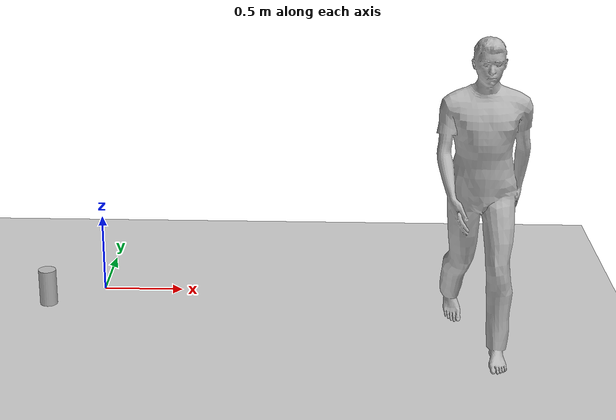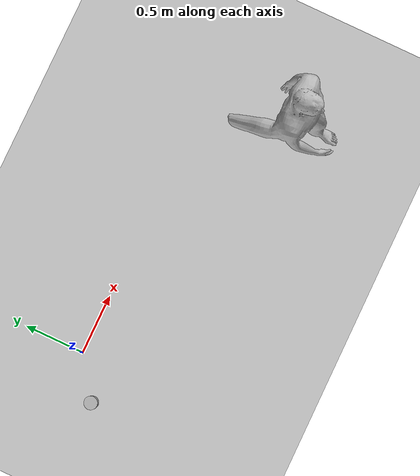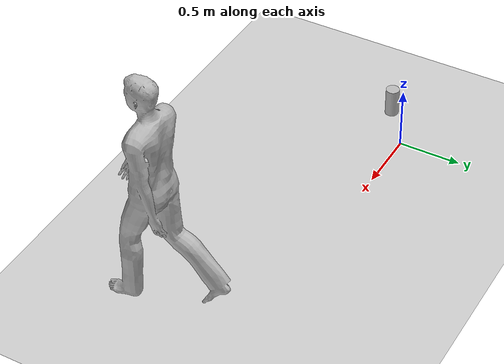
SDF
<sdf version="1.6">
 <world name="default">
  <light name="sun" type="directional">
   <pose>0 0 10 0 -0 0</pose>
   <diffuse>0.8 0.8 0.8 1</diffuse>
   <specular>0.2 0.2 0.2 1</specular>
   <attenuation>
    <range>1000</range>
    <constant>0.9</constant>
    <linear>0.01</linear>
    <quadratic>0.001</quadratic>
   </attenuation>
   <direction>-0.5 0.1 -0.9</direction>
  </light>
  <model name="ground_plane">
   <static>1</static>
   <link name="link">
    <collision name="collision">
     <geometry><plane><normal>0 0 1</normal><size>100 100</size></plane></geometry>
     <surface>
      <contact><collide_bitmask>65535</collide_bitmask></contact>
      <friction><ode><mu>100</mu><mu2>50</mu2></ode></friction>
     </surface>
    </collision>
    <visual name="visual">
     <cast_shadows>0</cast_shadows>
     <geometry><plane><normal>0 0 1</normal><size>100 100</size></plane></geometry>
     <material>
      <script><uri>file://media/materials/scripts/gazebo.material</uri><name>Gazebo/Grey</name></script>
     </material>
    </visual>
   </link>
  </model>
  <gravity>0 0 -9.8</gravity>
  <magnetic_field>6e-06 2.3e-05 -4.2e-05</magnetic_field>
  <atmosphere type="adiabatic"/>
  <physics name="default_physics" default="0" type="ode">
   <max_step_size>0.001</max_step_size>
   <real_time_factor>1</real_time_factor>
   <real_time_update_rate>1000</real_time_update_rate>
  </physics>
  <scene><ambient>0.4 0.4 0.4 1</ambient><background>0.7 0.7 0.7 1</background><shadows>1</shadows></scene>
  <audio><device>default</device></audio>
  <spherical_coordinates>
   <surface_model>EARTH_WGS84</surface_model>
   <latitude_deg>0</latitude_deg>
   <longitude_deg>0</longitude_deg>
   <elevation>0</elevation>
   <heading_deg>0</heading_deg>
  </spherical_coordinates>
  <model name="beer">
   <link name="link">
    <pose>0 0 0.115 0 -0 0</pose>
    <inertial>
     <mass>0.39</mass>
     <inertia><ixx>0.00058</ixx><ixy>0</ixy><ixz>0</ixz><iyy>0.00058</iyy><iyz>0</iyz><izz>0.00019</izz></inertia>
    </inertial>
    <collision name="collision">
     <geometry><cylinder><radius>0.055</radius><length>0.23</length></cylinder></geometry>
    </collision>
    <visual name="visual">
     <geometry><cylinder><radius>0.055</radius><length>0.23</length></cylinder></geometry>
     <material>
      <script>
       <uri>model://beer/materials/scripts</uri>
       <uri>model://beer/materials/textures</uri>
       <name>Beer/Diffuse</name>
      </script>
     </material>
    </visual>
   </link>
   <pose>-0.325983 -0.236237 -7e-06 -1e-06 -0 -2e-06</pose>
  </model>
  <model name="person_walking">
   <link name="link">
    <inertial>
     <pose>0 0 0.95 0 -0 0</pose>
     <mass>80</mass>
     <inertia><ixx>27.82</ixx><ixy>0</ixy><ixz>0</ixz><iyy>24.88</iyy><iyz>0</iyz><izz>4.57</izz></inertia>
    </inertial>
    <collision name="bottom">
     <pose>0 0 0.01 0 -0 0</pose>
     <geometry><box><size>0.35 0.75 0.02</size></box></geometry>
    </collision>
    <collision name="person">
     <pose>0 0 -0.02 0 -0 0</pose>
     <geometry><mesh><uri>model://person_walking/meshes/walking.dae</uri></mesh></geometry>
    </collision>
    <visual name="visual">
     <pose>0 0 -0.02 0 -0 0</pose>
     <geometry><mesh><uri>model://person_walking/meshes/walking.dae</uri></mesh></geometry>
    </visual>
   </link>
   <pose>2.29904 -0.717949 -1e-06 -2e-06 1e-06 0.000298</pose>
  </model>
 </world>
</sdf>
